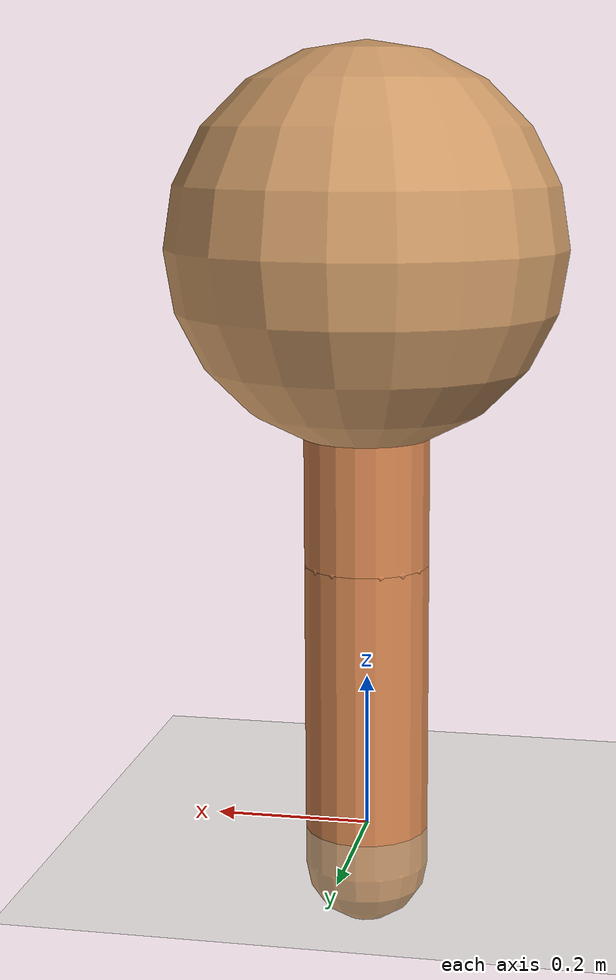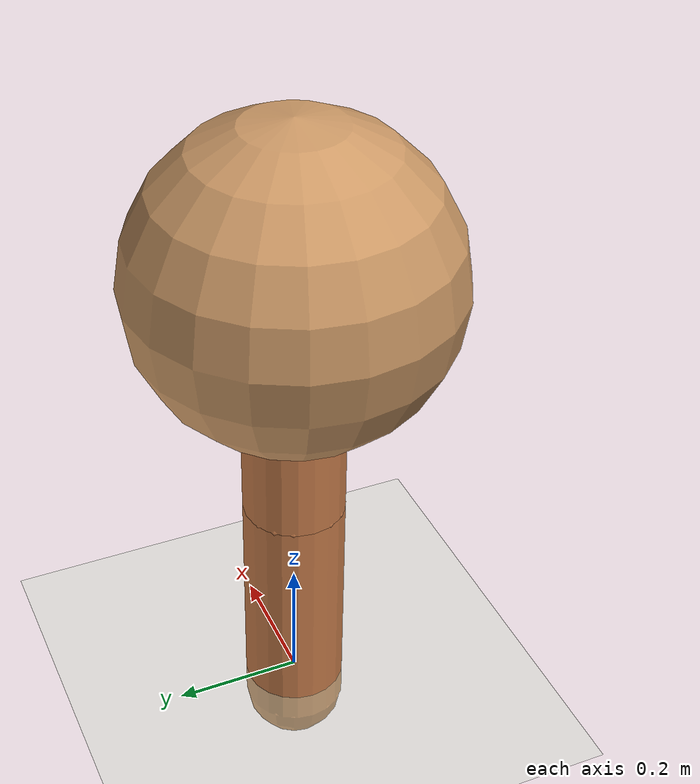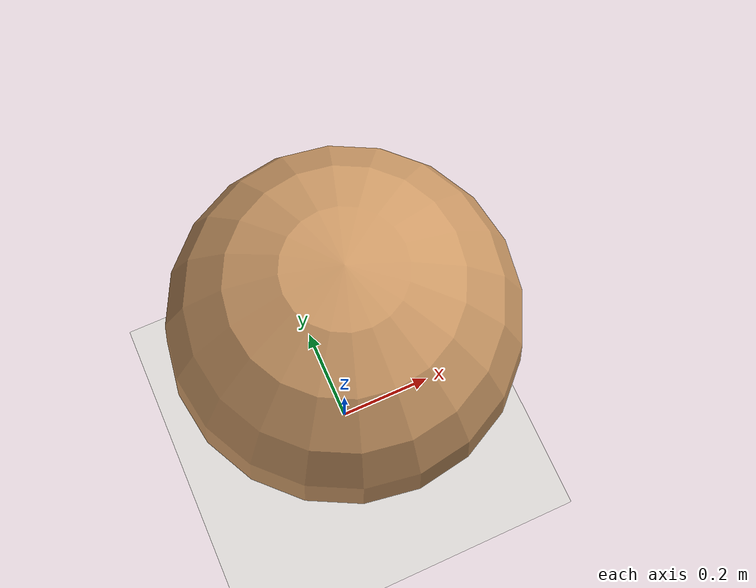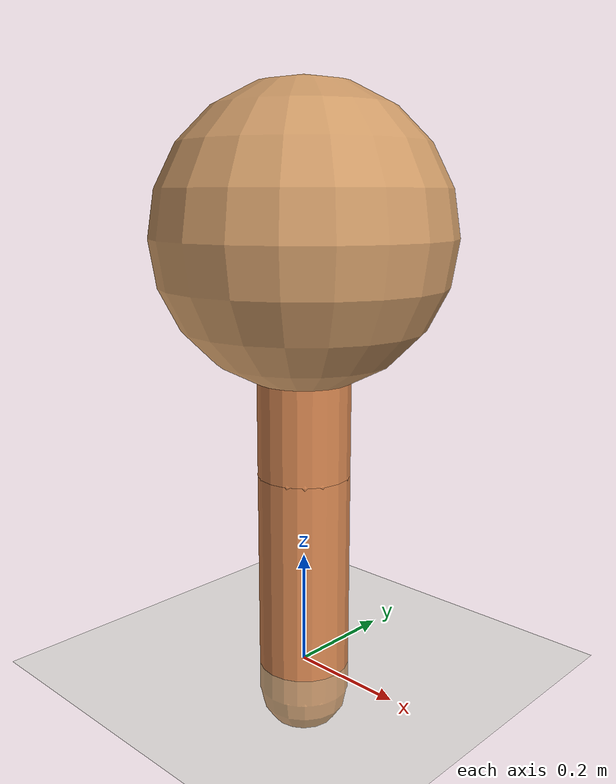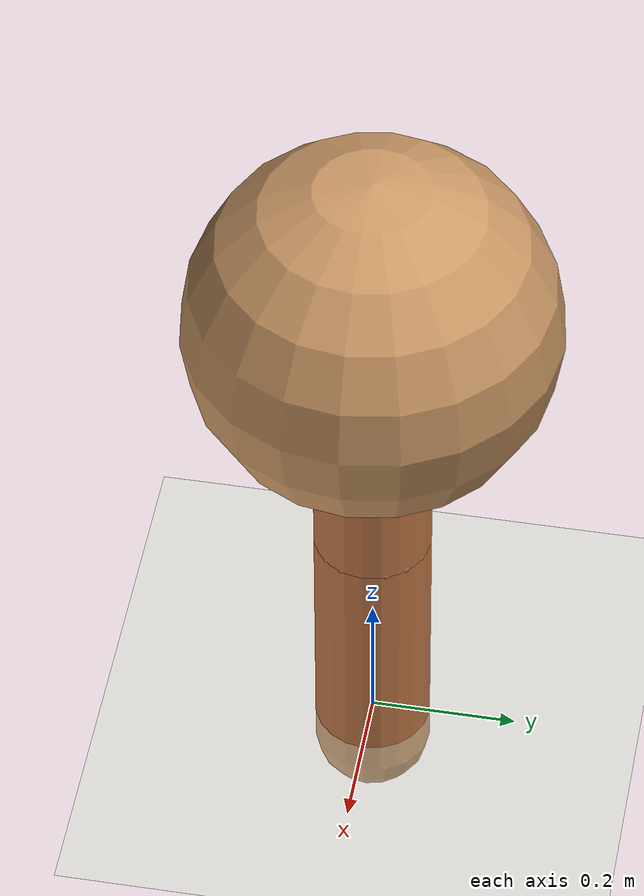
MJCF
<mujoco model="ant">
  <compiler angle="degree" coordinate="local" inertiafromgeom="true"/>
  <option integrator="RK4" timestep="0.01"/>
  <custom>
    <numeric data="0.0 0.0 0.55 1.0 0.0 0.0 0.0 0.0 1.0 0.0 -1.0 0.0 -1.0 0.0 1.0" name="init_qpos"/>
  </custom>
  <default>
    <joint armature="1" damping="1" limited="true"/>
    <geom conaffinity="0" condim="3" density="5.0" friction="1.5 0.1 0.1" margin="0.01" rgba="0.8 0.6 0.4 1"/>
  </default>
  <asset>
    <texture builtin="gradient" height="100" rgb1="1 1 1" rgb2="0 0 0" type="skybox" width="100"/>
    <texture builtin="flat" height="1278" mark="cross" markrgb="1 1 1" name="texgeom" random="0.01" rgb1="0.8 0.6 0.4" rgb2="0.8 0.6 0.4" type="cube" width="127"/>
    <texture builtin="checker" height="100" name="texplane" rgb1="0 0 0" rgb2="0.8 0.8 0.8" type="2d" width="100"/>
    <material name="MatPlane" reflectance="0.5" shininess="1" specular="1" texrepeat="60 60" texture="texplane"/>
    <material name="geom" texture="texgeom" texuniform="true"/>
  </asset>
  <worldbody>
    <light cutoff="100" diffuse="1 1 1" dir="-0 0 -1.3" directional="true" exponent="1" pos="0 0 1.3" specular=".1 .1 .1"/>
    <geom conaffinity="1" condim="3" material="MatPlane" name="floor" pos="0 0 0" rgba="0.8 0.9 0.8 1" size="40 40 40" type="plane"/>

    <body name="torso" pos="0 0 0.75">
      <camera name="track" mode="trackcom" pos="0 -3 0.3" xyaxes="1 0 0 0 0 1"/>

      <geom name="torso_geom" pos="0 0 0" size="0.25" type="sphere"/>
      <joint armature="0" damping="0" limited="false" margin="0.01" name="root" pos="0 0 0" type="free"/>
      <body name="leg" pos="0 0 0">
        <geom fromto="0.0 0.0 0.0 0 0 -0.2" name="aux_1_geom" size="0.08" type="capsule" rgba=".8 .5 .3 1"/>
        <body name="aux_1" pos="0 0 -0.2">
          <joint axis="0 1 0" name="hip_1" pos="0.0 0.0 0.0" range="-40 40" type="hinge"/>
          <geom fromto="0.0 0.0 0.0 0 0 -0.2" name="leg_geom" size="0.08" type="capsule" rgba=".8 .5 .3 1"/>
          <body name="foot" pos="0 0 -0.2">
            <joint axis="0 1 0" name="ankle_1" pos="0.0 0.0 0.0" range="30 100" type="hinge"/>
            <geom fromto="0.0 0.0 0.0 0 0 -0.4" name="left_ankle_geom" size="0.08" type="capsule" rgba=".8 .5 .3 1"/>
          </body>
        </body>
      </body>

    </body>
  </worldbody>
  <actuator>
    <motor ctrllimited="true" ctrlrange="-1.0 1.0" joint="hip_1" gear="150"/>
    <motor ctrllimited="true" ctrlrange="-1.0 1.0" joint="ankle_1" gear="150"/>
  </actuator>
</mujoco>
